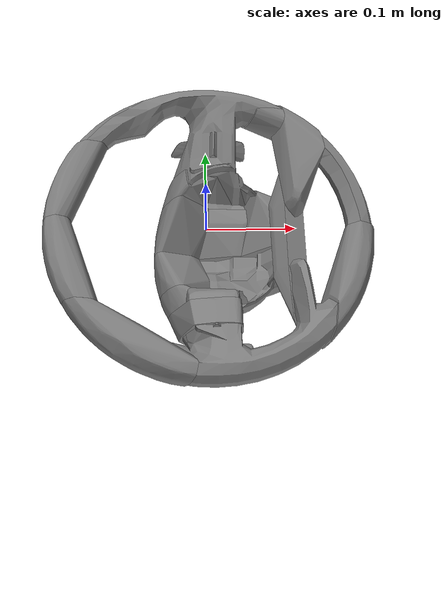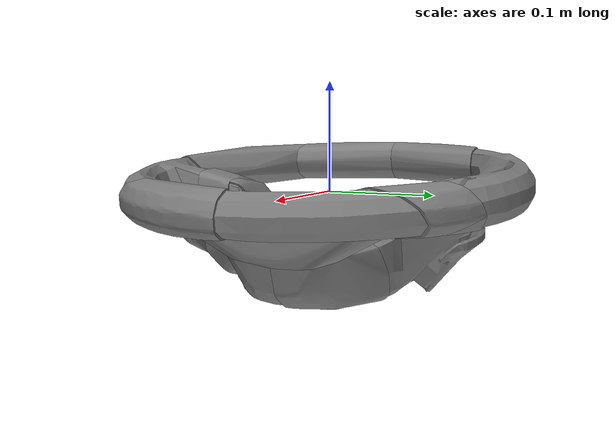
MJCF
<?xml version='1.0' encoding='utf-8'?>
<mujoco model="steering_wheel">
  <compiler angle="radian" />
  <asset>
    <mesh name="SteeringWheel_visual" file="meshes/visual/SteeringWheel.obj" />
    <mesh name="SteeringWheel_collision_000" file="meshes/convex_decomp/SteeringWheel_collision_000.obj" />
    <mesh name="SteeringWheel_collision_001" file="meshes/convex_decomp/SteeringWheel_collision_001.obj" />
    <mesh name="SteeringWheel_collision_002" file="meshes/convex_decomp/SteeringWheel_collision_002.obj" />
    <mesh name="SteeringWheel_collision_003" file="meshes/convex_decomp/SteeringWheel_collision_003.obj" />
    <mesh name="SteeringWheel_collision_004" file="meshes/convex_decomp/SteeringWheel_collision_004.obj" />
    <mesh name="SteeringWheel_collision_005" file="meshes/convex_decomp/SteeringWheel_collision_005.obj" />
    <mesh name="SteeringWheel_collision_006" file="meshes/convex_decomp/SteeringWheel_collision_006.obj" />
    <mesh name="SteeringWheel_collision_007" file="meshes/convex_decomp/SteeringWheel_collision_007.obj" />
    <mesh name="SteeringWheel_collision_008" file="meshes/convex_decomp/SteeringWheel_collision_008.obj" />
    <mesh name="SteeringWheel_collision_009" file="meshes/convex_decomp/SteeringWheel_collision_009.obj" />
    <mesh name="SteeringWheel_collision_010" file="meshes/convex_decomp/SteeringWheel_collision_010.obj" />
    <mesh name="SteeringWheel_collision_011" file="meshes/convex_decomp/SteeringWheel_collision_011.obj" />
    <mesh name="SteeringWheel_collision_012" file="meshes/convex_decomp/SteeringWheel_collision_012.obj" />
    <mesh name="SteeringWheel_collision_013" file="meshes/convex_decomp/SteeringWheel_collision_013.obj" />
    <mesh name="SteeringWheel_collision_014" file="meshes/convex_decomp/SteeringWheel_collision_014.obj" />
    <mesh name="SteeringWheel_collision_015" file="meshes/convex_decomp/SteeringWheel_collision_015.obj" />
    <mesh name="SteeringWheel_collision_016" file="meshes/convex_decomp/SteeringWheel_collision_016.obj" />
    <mesh name="SteeringWheel_collision_017" file="meshes/convex_decomp/SteeringWheel_collision_017.obj" />
    <mesh name="SteeringWheel_collision_018" file="meshes/convex_decomp/SteeringWheel_collision_018.obj" />
    <mesh name="SteeringWheel_collision_019" file="meshes/convex_decomp/SteeringWheel_collision_019.obj" />
    <mesh name="SteeringWheel_collision_020" file="meshes/convex_decomp/SteeringWheel_collision_020.obj" />
    <mesh name="SteeringWheel_collision_021" file="meshes/convex_decomp/SteeringWheel_collision_021.obj" />
    <mesh name="SteeringWheel_collision_022" file="meshes/convex_decomp/SteeringWheel_collision_022.obj" />
    <mesh name="SteeringWheel_collision_023" file="meshes/convex_decomp/SteeringWheel_collision_023.obj" />
    <mesh name="SteeringWheel_collision_024" file="meshes/convex_decomp/SteeringWheel_collision_024.obj" />
    <mesh name="SteeringWheel_collision_025" file="meshes/convex_decomp/SteeringWheel_collision_025.obj" />
    <mesh name="SteeringWheel_collision_026" file="meshes/convex_decomp/SteeringWheel_collision_026.obj" />
    <mesh name="SteeringWheel_collision_027" file="meshes/convex_decomp/SteeringWheel_collision_027.obj" />
    <mesh name="SteeringWheel_collision_028" file="meshes/convex_decomp/SteeringWheel_collision_028.obj" />
    <mesh name="SteeringWheel_collision_029" file="meshes/convex_decomp/SteeringWheel_collision_029.obj" />
    <mesh name="SteeringWheel_collision_030" file="meshes/convex_decomp/SteeringWheel_collision_030.obj" />
    <mesh name="SteeringWheel_collision_031" file="meshes/convex_decomp/SteeringWheel_collision_031.obj" />
  </asset>
  <worldbody>
    <body><body name="object" pos="0 0 0" quat="1.0 0.0 0.0 0.0"><body quat="0.8660 0.0 -0.5 0.0">
      <inertial mass="1.0" pos="-0.012965605568427867 -9.422105265662918e-05 -0.02539482589840707" fullinertia="0.03277455250948166 0.016359309251504976 0.025347101805475652 -2.8274208730749396e-06 0.004375815690067291 1.1103505553011279e-05" />
      <geom name="steering_wheel_mesh_000" group="0" type="mesh" mesh="SteeringWheel_collision_000" solref="0.001 1.0" solimp="0.998 0.998 0.001" />
      <geom name="steering_wheel_mesh_001" group="0" type="mesh" mesh="SteeringWheel_collision_001" solref="0.001 1.0" solimp="0.998 0.998 0.001" />
      <geom name="steering_wheel_mesh_002" group="0" type="mesh" mesh="SteeringWheel_collision_002" solref="0.001 1.0" solimp="0.998 0.998 0.001" />
      <geom name="steering_wheel_mesh_003" group="0" type="mesh" mesh="SteeringWheel_collision_003" solref="0.001 1.0" solimp="0.998 0.998 0.001" />
      <geom name="steering_wheel_mesh_004" group="0" type="mesh" mesh="SteeringWheel_collision_004" solref="0.001 1.0" solimp="0.998 0.998 0.001" />
      <geom name="steering_wheel_mesh_005" group="0" type="mesh" mesh="SteeringWheel_collision_005" solref="0.001 1.0" solimp="0.998 0.998 0.001" />
      <geom name="steering_wheel_mesh_006" group="0" type="mesh" mesh="SteeringWheel_collision_006" solref="0.001 1.0" solimp="0.998 0.998 0.001" />
      <geom name="steering_wheel_mesh_007" group="0" type="mesh" mesh="SteeringWheel_collision_007" solref="0.001 1.0" solimp="0.998 0.998 0.001" />
      <geom name="steering_wheel_mesh_008" group="0" type="mesh" mesh="SteeringWheel_collision_008" solref="0.001 1.0" solimp="0.998 0.998 0.001" />
      <geom name="steering_wheel_mesh_009" group="0" type="mesh" mesh="SteeringWheel_collision_009" solref="0.001 1.0" solimp="0.998 0.998 0.001" />
      <geom name="steering_wheel_mesh_010" group="0" type="mesh" mesh="SteeringWheel_collision_010" solref="0.001 1.0" solimp="0.998 0.998 0.001" />
      <geom name="steering_wheel_mesh_011" group="0" type="mesh" mesh="SteeringWheel_collision_011" solref="0.001 1.0" solimp="0.998 0.998 0.001" />
      <geom name="steering_wheel_mesh_012" group="0" type="mesh" mesh="SteeringWheel_collision_012" solref="0.001 1.0" solimp="0.998 0.998 0.001" />
      <geom name="steering_wheel_mesh_013" group="0" type="mesh" mesh="SteeringWheel_collision_013" solref="0.001 1.0" solimp="0.998 0.998 0.001" />
      <geom name="steering_wheel_mesh_014" group="0" type="mesh" mesh="SteeringWheel_collision_014" solref="0.001 1.0" solimp="0.998 0.998 0.001" />
      <geom name="steering_wheel_mesh_015" group="0" type="mesh" mesh="SteeringWheel_collision_015" solref="0.001 1.0" solimp="0.998 0.998 0.001" />
      <geom name="steering_wheel_mesh_016" group="0" type="mesh" mesh="SteeringWheel_collision_016" solref="0.001 1.0" solimp="0.998 0.998 0.001" />
      <geom name="steering_wheel_mesh_017" group="0" type="mesh" mesh="SteeringWheel_collision_017" solref="0.001 1.0" solimp="0.998 0.998 0.001" />
      <geom name="steering_wheel_mesh_018" group="0" type="mesh" mesh="SteeringWheel_collision_018" solref="0.001 1.0" solimp="0.998 0.998 0.001" />
      <geom name="steering_wheel_mesh_019" group="0" type="mesh" mesh="SteeringWheel_collision_019" solref="0.001 1.0" solimp="0.998 0.998 0.001" />
      <geom name="steering_wheel_mesh_020" group="0" type="mesh" mesh="SteeringWheel_collision_020" solref="0.001 1.0" solimp="0.998 0.998 0.001" />
      <geom name="steering_wheel_mesh_021" group="0" type="mesh" mesh="SteeringWheel_collision_021" solref="0.001 1.0" solimp="0.998 0.998 0.001" />
      <geom name="steering_wheel_mesh_022" group="0" type="mesh" mesh="SteeringWheel_collision_022" solref="0.001 1.0" solimp="0.998 0.998 0.001" />
      <geom name="steering_wheel_mesh_023" group="0" type="mesh" mesh="SteeringWheel_collision_023" solref="0.001 1.0" solimp="0.998 0.998 0.001" />
      <geom name="steering_wheel_mesh_024" group="0" type="mesh" mesh="SteeringWheel_collision_024" solref="0.001 1.0" solimp="0.998 0.998 0.001" />
      <geom name="steering_wheel_mesh_025" group="0" type="mesh" mesh="SteeringWheel_collision_025" solref="0.001 1.0" solimp="0.998 0.998 0.001" />
      <geom name="steering_wheel_mesh_026" group="0" type="mesh" mesh="SteeringWheel_collision_026" solref="0.001 1.0" solimp="0.998 0.998 0.001" />
      <geom name="steering_wheel_mesh_027" group="0" type="mesh" mesh="SteeringWheel_collision_027" solref="0.001 1.0" solimp="0.998 0.998 0.001" />
      <geom name="steering_wheel_mesh_028" group="0" type="mesh" mesh="SteeringWheel_collision_028" solref="0.001 1.0" solimp="0.998 0.998 0.001" />
      <geom name="steering_wheel_mesh_029" group="0" type="mesh" mesh="SteeringWheel_collision_029" solref="0.001 1.0" solimp="0.998 0.998 0.001" />
      <geom name="steering_wheel_mesh_030" group="0" type="mesh" mesh="SteeringWheel_collision_030" solref="0.001 1.0" solimp="0.998 0.998 0.001" />
      <geom name="steering_wheel_mesh_031" group="0" type="mesh" mesh="SteeringWheel_collision_031" solref="0.001 1.0" solimp="0.998 0.998 0.001" />
    <geom name="object_visual" type="mesh" mesh="SteeringWheel_visual" group="1" conaffinity="0" contype="0" solref="0.001 1.0" solimp="0.998 0.998 0.001" /></body></body>
  <site name="bottom_site" pos="0.0 0.0 0.0" rgba="0 0 0 0" size="0.005" /><site name="top_site" pos="0.0 0.0 0.0" rgba="0 0 0 0" size="0.005" /><site name="horizontal_radius_site" pos="0.0 0.0 0.0" rgba="0 0 0 0" size="0.005" /></body></worldbody>
</mujoco>
